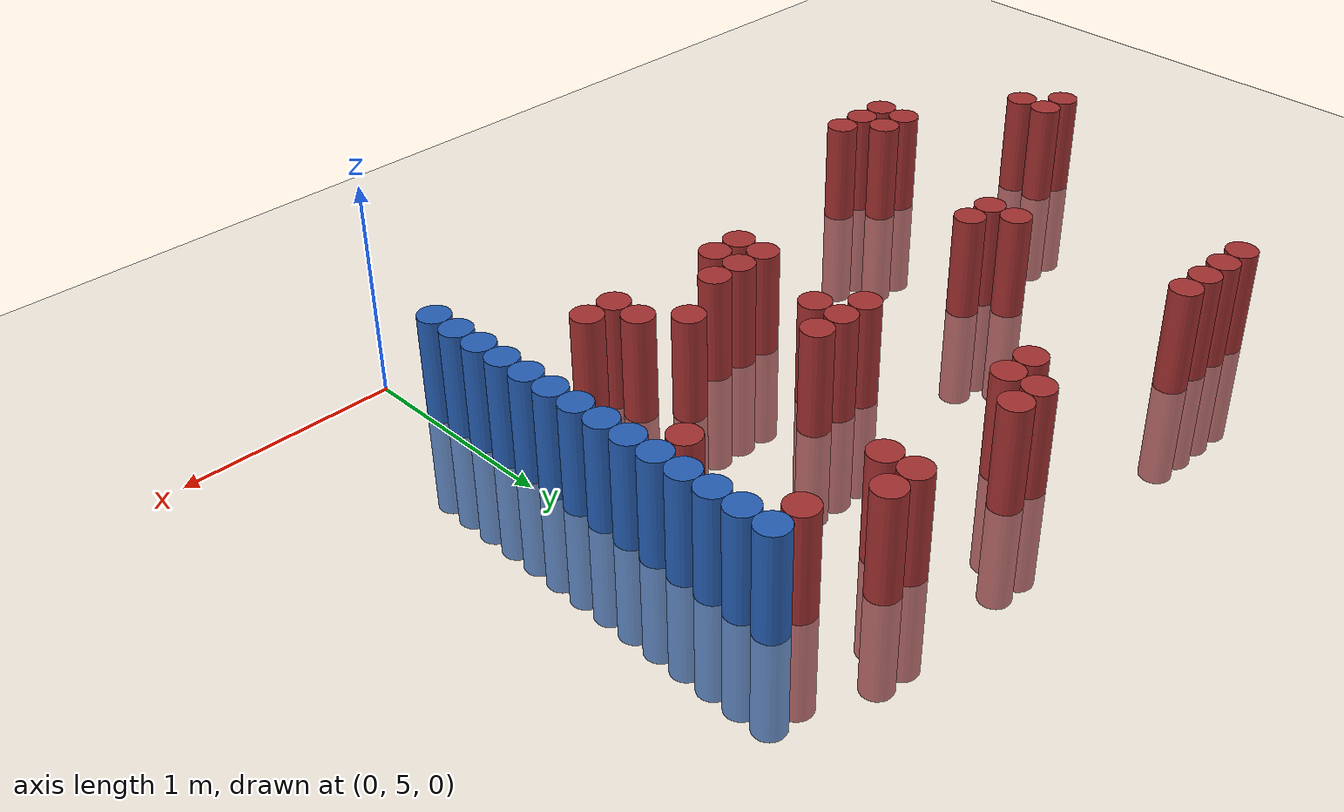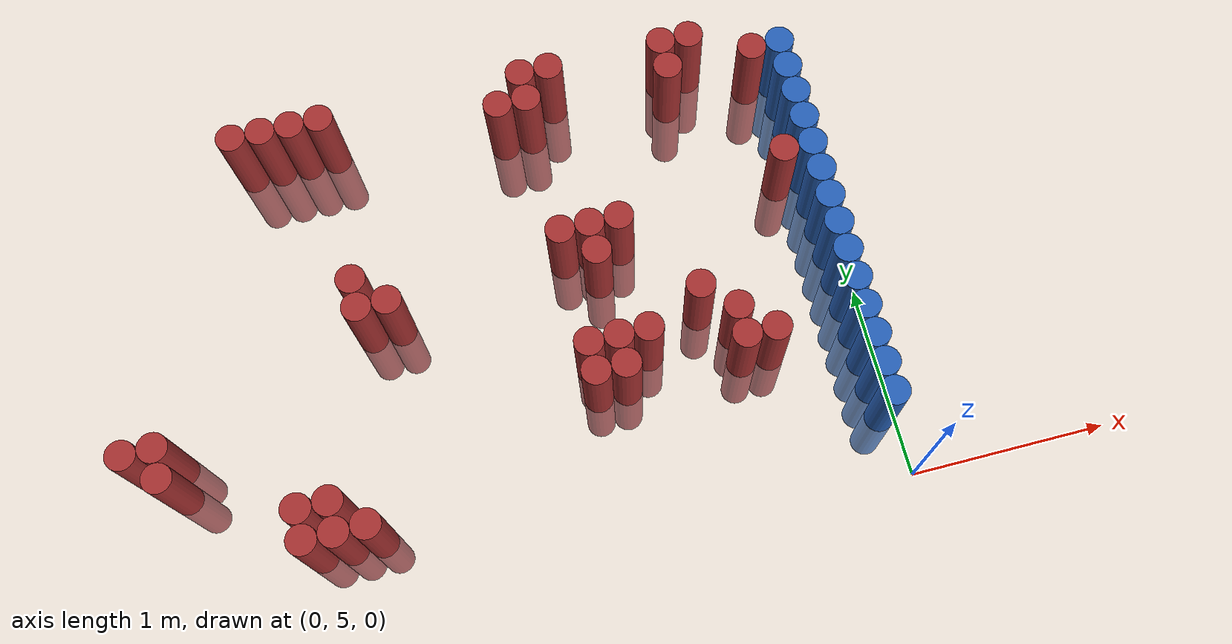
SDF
<sdf version="1.6">
 <world name="default">
  <model name="ground_plane">
   <static>1</static>
   <link name="link">
    <collision name="collision">
     <geometry><plane><normal>0 0 1</normal><size>100 100</size></plane></geometry>
     <surface><friction><ode><mu>100</mu><mu2>50</mu2></ode></friction></surface>
    </collision>
    <visual name="visual">
     <cast_shadows>0</cast_shadows>
     <geometry><plane><normal>0 0 1</normal><size>100 100</size></plane></geometry>
     <material>
      <script><uri>file://media/materials/scripts/gazebo.material</uri><name>Gazebo/Grey</name></script>
     </material>
    </visual>
   </link>
  </model>
  <model name="unit_cylinder_149">
   <static>1</static>
   <pose>-3.675000 5.925000 0.000000 0.000000 0.000000 0.000000</pose>
   <link name="link">
    <inertial>
     <mass>1</mass>
     <inertia><ixx>0.145833</ixx><ixy>0</ixy><ixz>0</ixz><iyy>0.145833</iyy><iyz>0</iyz><izz>0.125</izz></inertia>
    </inertial>
    <collision name="collision">
     <geometry><cylinder><radius>0.075000</radius><length>1</length></cylinder></geometry>
    </collision>
    <visual name="visual">
     <geometry><cylinder><radius>0.075000</radius><length>1</length></cylinder></geometry>
     <material>
      <ambient>0.648000 0.192000 0.192000 1</ambient>
      <diffuse>0.648000 0.192000 0.192000 1</diffuse>
     </material>
     <material>
      <script><name>Gazebo/Grey</name><uri>file://media/materials/scripts/gazebo.material</uri></script>
     </material>
    </visual>
   </link>
  </model>
  <model name="unit_cylinder_150">
   <static>1</static>
   <pose>-3.525000 5.775000 0.000000 0.000000 0.000000 0.000000</pose>
   <link name="link">
    <inertial>
     <mass>1</mass>
     <inertia><ixx>0.145833</ixx><ixy>0</ixy><ixz>0</ixz><iyy>0.145833</iyy><iyz>0</iyz><izz>0.125</izz></inertia>
    </inertial>
    <collision name="collision">
     <geometry><cylinder><radius>0.075000</radius><length>1</length></cylinder></geometry>
    </collision>
    <visual name="visual">
     <geometry><cylinder><radius>0.075000</radius><length>1</length></cylinder></geometry>
     <material>
      <ambient>0.648000 0.192000 0.192000 1</ambient>
      <diffuse>0.648000 0.192000 0.192000 1</diffuse>
     </material>
     <material>
      <script><name>Gazebo/Grey</name><uri>file://media/materials/scripts/gazebo.material</uri></script>
     </material>
    </visual>
   </link>
  </model>
  <model name="unit_cylinder_151">
   <static>1</static>
   <pose>-3.525000 5.925000 0.000000 0.000000 0.000000 0.000000</pose>
   <link name="link">
    <inertial>
     <mass>1</mass>
     <inertia><ixx>0.145833</ixx><ixy>0</ixy><ixz>0</ixz><iyy>0.145833</iyy><iyz>0</iyz><izz>0.125</izz></inertia>
    </inertial>
    <collision name="collision">
     <geometry><cylinder><radius>0.075000</radius><length>1</length></cylinder></geometry>
    </collision>
    <visual name="visual">
     <geometry><cylinder><radius>0.075000</radius><length>1</length></cylinder></geometry>
     <material>
      <ambient>0.648000 0.192000 0.192000 1</ambient>
      <diffuse>0.648000 0.192000 0.192000 1</diffuse>
     </material>
     <material>
      <script><name>Gazebo/Grey</name><uri>file://media/materials/scripts/gazebo.material</uri></script>
     </material>
    </visual>
   </link>
  </model>
  <model name="unit_cylinder_156">
   <static>1</static>
   <pose>-2.925000 5.325000 0.000000 0.000000 0.000000 0.000000</pose>
   <link name="link">
    <inertial>
     <mass>1</mass>
     <inertia><ixx>0.145833</ixx><ixy>0</ixy><ixz>0</ixz><iyy>0.145833</iyy><iyz>0</iyz><izz>0.125</izz></inertia>
    </inertial>
    <collision name="collision">
     <geometry><cylinder><radius>0.075000</radius><length>1</length></cylinder></geometry>
    </collision>
    <visual name="visual">
     <geometry><cylinder><radius>0.075000</radius><length>1</length></cylinder></geometry>
     <material>
      <ambient>0.648000 0.192000 0.192000 1</ambient>
      <diffuse>0.648000 0.192000 0.192000 1</diffuse>
     </material>
     <material>
      <script><name>Gazebo/Grey</name><uri>file://media/materials/scripts/gazebo.material</uri></script>
     </material>
    </visual>
   </link>
  </model>
  <model name="unit_cylinder_157">
   <static>1</static>
   <pose>-2.925000 5.475000 0.000000 0.000000 0.000000 0.000000</pose>
   <link name="link">
    <inertial>
     <mass>1</mass>
     <inertia><ixx>0.145833</ixx><ixy>0</ixy><ixz>0</ixz><iyy>0.145833</iyy><iyz>0</iyz><izz>0.125</izz></inertia>
    </inertial>
    <collision name="collision">
     <geometry><cylinder><radius>0.075000</radius><length>1</length></cylinder></geometry>
    </collision>
    <visual name="visual">
     <geometry><cylinder><radius>0.075000</radius><length>1</length></cylinder></geometry>
     <material>
      <ambient>0.648000 0.192000 0.192000 1</ambient>
      <diffuse>0.648000 0.192000 0.192000 1</diffuse>
     </material>
     <material>
      <script><name>Gazebo/Grey</name><uri>file://media/materials/scripts/gazebo.material</uri></script>
     </material>
    </visual>
   </link>
  </model>
  <model name="unit_cylinder_158">
   <static>1</static>
   <pose>-2.925000 7.425000 0.000000 0.000000 0.000000 0.000000</pose>
   <link name="link">
    <inertial>
     <mass>1</mass>
     <inertia><ixx>0.145833</ixx><ixy>0</ixy><ixz>0</ixz><iyy>0.145833</iyy><iyz>0</iyz><izz>0.125</izz></inertia>
    </inertial>
    <collision name="collision">
     <geometry><cylinder><radius>0.075000</radius><length>1</length></cylinder></geometry>
    </collision>
    <visual name="visual">
     <geometry><cylinder><radius>0.075000</radius><length>1</length></cylinder></geometry>
     <material>
      <ambient>0.648000 0.192000 0.192000 1</ambient>
      <diffuse>0.648000 0.192000 0.192000 1</diffuse>
     </material>
     <material>
      <script><name>Gazebo/Grey</name><uri>file://media/materials/scripts/gazebo.material</uri></script>
     </material>
    </visual>
   </link>
  </model>
  <model name="unit_cylinder_163">
   <static>1</static>
   <pose>-2.775000 5.325000 0.000000 0.000000 0.000000 0.000000</pose>
   <link name="link">
    <inertial>
     <mass>1</mass>
     <inertia><ixx>0.145833</ixx><ixy>0</ixy><ixz>0</ixz><iyy>0.145833</iyy><iyz>0</iyz><izz>0.125</izz></inertia>
    </inertial>
    <collision name="collision">
     <geometry><cylinder><radius>0.075000</radius><length>1</length></cylinder></geometry>
    </collision>
    <visual name="visual">
     <geometry><cylinder><radius>0.075000</radius><length>1</length></cylinder></geometry>
     <material>
      <ambient>0.648000 0.192000 0.192000 1</ambient>
      <diffuse>0.648000 0.192000 0.192000 1</diffuse>
     </material>
     <material>
      <script><name>Gazebo/Grey</name><uri>file://media/materials/scripts/gazebo.material</uri></script>
     </material>
    </visual>
   </link>
  </model>
  <model name="unit_cylinder_164">
   <static>1</static>
   <pose>-2.775000 5.475000 0.000000 0.000000 0.000000 0.000000</pose>
   <link name="link">
    <inertial>
     <mass>1</mass>
     <inertia><ixx>0.145833</ixx><ixy>0</ixy><ixz>0</ixz><iyy>0.145833</iyy><iyz>0</iyz><izz>0.125</izz></inertia>
    </inertial>
    <collision name="collision">
     <geometry><cylinder><radius>0.075000</radius><length>1</length></cylinder></geometry>
    </collision>
    <visual name="visual">
     <geometry><cylinder><radius>0.075000</radius><length>1</length></cylinder></geometry>
     <material>
      <ambient>0.648000 0.192000 0.192000 1</ambient>
      <diffuse>0.648000 0.192000 0.192000 1</diffuse>
     </material>
     <material>
      <script><name>Gazebo/Grey</name><uri>file://media/materials/scripts/gazebo.material</uri></script>
     </material>
    </visual>
   </link>
  </model>
  <model name="unit_cylinder_165">
   <static>1</static>
   <pose>-2.775000 7.425000 0.000000 0.000000 0.000000 0.000000</pose>
   <link name="link">
    <inertial>
     <mass>1</mass>
     <inertia><ixx>0.145833</ixx><ixy>0</ixy><ixz>0</ixz><iyy>0.145833</iyy><iyz>0</iyz><izz>0.125</izz></inertia>
    </inertial>
    <collision name="collision">
     <geometry><cylinder><radius>0.075000</radius><length>1</length></cylinder></geometry>
    </collision>
    <visual name="visual">
     <geometry><cylinder><radius>0.075000</radius><length>1</length></cylinder></geometry>
     <material>
      <ambient>0.648000 0.192000 0.192000 1</ambient>
      <diffuse>0.648000 0.192000 0.192000 1</diffuse>
     </material>
     <material>
      <script><name>Gazebo/Grey</name><uri>file://media/materials/scripts/gazebo.material</uri></script>
     </material>
    </visual>
   </link>
  </model>
  <model name="unit_cylinder_167">
   <static>1</static>
   <pose>-2.625000 5.325000 0.000000 0.000000 0.000000 0.000000</pose>
   <link name="link">
    <inertial>
     <mass>1</mass>
     <inertia><ixx>0.145833</ixx><ixy>0</ixy><ixz>0</ixz><iyy>0.145833</iyy><iyz>0</iyz><izz>0.125</izz></inertia>
    </inertial>
    <collision name="collision">
     <geometry><cylinder><radius>0.075000</radius><length>1</length></cylinder></geometry>
    </collision>
    <visual name="visual">
     <geometry><cylinder><radius>0.075000</radius><length>1</length></cylinder></geometry>
     <material>
      <ambient>0.648000 0.192000 0.192000 1</ambient>
      <diffuse>0.648000 0.192000 0.192000 1</diffuse>
     </material>
     <material>
      <script><name>Gazebo/Grey</name><uri>file://media/materials/scripts/gazebo.material</uri></script>
     </material>
    </visual>
   </link>
  </model>
  <model name="unit_cylinder_168">
   <static>1</static>
   <pose>-2.625000 7.425000 0.000000 0.000000 0.000000 0.000000</pose>
   <link name="link">
    <inertial>
     <mass>1</mass>
     <inertia><ixx>0.145833</ixx><ixy>0</ixy><ixz>0</ixz><iyy>0.145833</iyy><iyz>0</iyz><izz>0.125</izz></inertia>
    </inertial>
    <collision name="collision">
     <geometry><cylinder><radius>0.075000</radius><length>1</length></cylinder></geometry>
    </collision>
    <visual name="visual">
     <geometry><cylinder><radius>0.075000</radius><length>1</length></cylinder></geometry>
     <material>
      <ambient>0.648000 0.192000 0.192000 1</ambient>
      <diffuse>0.648000 0.192000 0.192000 1</diffuse>
     </material>
     <material>
      <script><name>Gazebo/Grey</name><uri>file://media/materials/scripts/gazebo.material</uri></script>
     </material>
    </visual>
   </link>
  </model>
  <model name="unit_cylinder_170">
   <static>1</static>
   <pose>-2.475000 6.375000 0.000000 0.000000 0.000000 0.000000</pose>
   <link name="link">
    <inertial>
     <mass>1</mass>
     <inertia><ixx>0.145833</ixx><ixy>0</ixy><ixz>0</ixz><iyy>0.145833</iyy><iyz>0</iyz><izz>0.125</izz></inertia>
    </inertial>
    <collision name="collision">
     <geometry><cylinder><radius>0.075000</radius><length>1</length></cylinder></geometry>
    </collision>
    <visual name="visual">
     <geometry><cylinder><radius>0.075000</radius><length>1</length></cylinder></geometry>
     <material>
      <ambient>0.648000 0.192000 0.192000 1</ambient>
      <diffuse>0.648000 0.192000 0.192000 1</diffuse>
     </material>
     <material>
      <script><name>Gazebo/Grey</name><uri>file://media/materials/scripts/gazebo.material</uri></script>
     </material>
    </visual>
   </link>
  </model>
  <model name="unit_cylinder_171">
   <static>1</static>
   <pose>-2.475000 6.525000 0.000000 0.000000 0.000000 0.000000</pose>
   <link name="link">
    <inertial>
     <mass>1</mass>
     <inertia><ixx>0.145833</ixx><ixy>0</ixy><ixz>0</ixz><iyy>0.145833</iyy><iyz>0</iyz><izz>0.125</izz></inertia>
    </inertial>
    <collision name="collision">
     <geometry><cylinder><radius>0.075000</radius><length>1</length></cylinder></geometry>
    </collision>
    <visual name="visual">
     <geometry><cylinder><radius>0.075000</radius><length>1</length></cylinder></geometry>
     <material>
      <ambient>0.648000 0.192000 0.192000 1</ambient>
      <diffuse>0.648000 0.192000 0.192000 1</diffuse>
     </material>
     <material>
      <script><name>Gazebo/Grey</name><uri>file://media/materials/scripts/gazebo.material</uri></script>
     </material>
    </visual>
   </link>
  </model>
  <model name="unit_cylinder_172">
   <static>1</static>
   <pose>-2.475000 7.425000 0.000000 0.000000 0.000000 0.000000</pose>
   <link name="link">
    <inertial>
     <mass>1</mass>
     <inertia><ixx>0.145833</ixx><ixy>0</ixy><ixz>0</ixz><iyy>0.145833</iyy><iyz>0</iyz><izz>0.125</izz></inertia>
    </inertial>
    <collision name="collision">
     <geometry><cylinder><radius>0.075000</radius><length>1</length></cylinder></geometry>
    </collision>
    <visual name="visual">
     <geometry><cylinder><radius>0.075000</radius><length>1</length></cylinder></geometry>
     <material>
      <ambient>0.648000 0.192000 0.192000 1</ambient>
      <diffuse>0.648000 0.192000 0.192000 1</diffuse>
     </material>
     <material>
      <script><name>Gazebo/Grey</name><uri>file://media/materials/scripts/gazebo.material</uri></script>
     </material>
    </visual>
   </link>
  </model>
  <model name="unit_cylinder_175">
   <static>1</static>
   <pose>-2.325000 6.375000 0.000000 0.000000 0.000000 0.000000</pose>
   <link name="link">
    <inertial>
     <mass>1</mass>
     <inertia><ixx>0.145833</ixx><ixy>0</ixy><ixz>0</ixz><iyy>0.145833</iyy><iyz>0</iyz><izz>0.125</izz></inertia>
    </inertial>
    <collision name="collision">
     <geometry><cylinder><radius>0.075000</radius><length>1</length></cylinder></geometry>
    </collision>
    <visual name="visual">
     <geometry><cylinder><radius>0.075000</radius><length>1</length></cylinder></geometry>
     <material>
      <ambient>0.648000 0.192000 0.192000 1</ambient>
      <diffuse>0.648000 0.192000 0.192000 1</diffuse>
     </material>
     <material>
      <script><name>Gazebo/Grey</name><uri>file://media/materials/scripts/gazebo.material</uri></script>
     </material>
    </visual>
   </link>
  </model>
  <model name="unit_cylinder_179">
   <static>1</static>
   <pose>-1.575000 7.275000 0.000000 0.000000 0.000000 0.000000</pose>
   <link name="link">
    <inertial>
     <mass>1</mass>
     <inertia><ixx>0.145833</ixx><ixy>0</ixy><ixz>0</ixz><iyy>0.145833</iyy><iyz>0</iyz><izz>0.125</izz></inertia>
    </inertial>
    <collision name="collision">
     <geometry><cylinder><radius>0.075000</radius><length>1</length></cylinder></geometry>
    </collision>
    <visual name="visual">
     <geometry><cylinder><radius>0.075000</radius><length>1</length></cylinder></geometry>
     <material>
      <ambient>0.648000 0.192000 0.192000 1</ambient>
      <diffuse>0.648000 0.192000 0.192000 1</diffuse>
     </material>
     <material>
      <script><name>Gazebo/Grey</name><uri>file://media/materials/scripts/gazebo.material</uri></script>
     </material>
    </visual>
   </link>
  </model>
  <model name="unit_cylinder_187">
   <static>1</static>
   <pose>-1.425000 5.775000 0.000000 0.000000 0.000000 0.000000</pose>
   <link name="link">
    <inertial>
     <mass>1</mass>
     <inertia><ixx>0.145833</ixx><ixy>0</ixy><ixz>0</ixz><iyy>0.145833</iyy><iyz>0</iyz><izz>0.125</izz></inertia>
    </inertial>
    <collision name="collision">
     <geometry><cylinder><radius>0.075000</radius><length>1</length></cylinder></geometry>
    </collision>
    <visual name="visual">
     <geometry><cylinder><radius>0.075000</radius><length>1</length></cylinder></geometry>
     <material>
      <ambient>0.648000 0.192000 0.192000 1</ambient>
      <diffuse>0.648000 0.192000 0.192000 1</diffuse>
     </material>
     <material>
      <script><name>Gazebo/Grey</name><uri>file://media/materials/scripts/gazebo.material</uri></script>
     </material>
    </visual>
   </link>
  </model>
  <model name="unit_cylinder_188">
   <static>1</static>
   <pose>-1.425000 5.925000 0.000000 0.000000 0.000000 0.000000</pose>
   <link name="link">
    <inertial>
     <mass>1</mass>
     <inertia><ixx>0.145833</ixx><ixy>0</ixy><ixz>0</ixz><iyy>0.145833</iyy><iyz>0</iyz><izz>0.125</izz></inertia>
    </inertial>
    <collision name="collision">
     <geometry><cylinder><radius>0.075000</radius><length>1</length></cylinder></geometry>
    </collision>
    <visual name="visual">
     <geometry><cylinder><radius>0.075000</radius><length>1</length></cylinder></geometry>
     <material>
      <ambient>0.648000 0.192000 0.192000 1</ambient>
      <diffuse>0.648000 0.192000 0.192000 1</diffuse>
     </material>
     <material>
      <script><name>Gazebo/Grey</name><uri>file://media/materials/scripts/gazebo.material</uri></script>
     </material>
    </visual>
   </link>
  </model>
  <model name="unit_cylinder_189">
   <static>1</static>
   <pose>-1.425000 6.525000 0.000000 0.000000 0.000000 0.000000</pose>
   <link name="link">
    <inertial>
     <mass>1</mass>
     <inertia><ixx>0.145833</ixx><ixy>0</ixy><ixz>0</ixz><iyy>0.145833</iyy><iyz>0</iyz><izz>0.125</izz></inertia>
    </inertial>
    <collision name="collision">
     <geometry><cylinder><radius>0.075000</radius><length>1</length></cylinder></geometry>
    </collision>
    <visual name="visual">
     <geometry><cylinder><radius>0.075000</radius><length>1</length></cylinder></geometry>
     <material>
      <ambient>0.648000 0.192000 0.192000 1</ambient>
      <diffuse>0.648000 0.192000 0.192000 1</diffuse>
     </material>
     <material>
      <script><name>Gazebo/Grey</name><uri>file://media/materials/scripts/gazebo.material</uri></script>
     </material>
    </visual>
   </link>
  </model>
  <model name="unit_cylinder_190">
   <static>1</static>
   <pose>-1.425000 7.275000 0.000000 0.000000 0.000000 0.000000</pose>
   <link name="link">
    <inertial>
     <mass>1</mass>
     <inertia><ixx>0.145833</ixx><ixy>0</ixy><ixz>0</ixz><iyy>0.145833</iyy><iyz>0</iyz><izz>0.125</izz></inertia>
    </inertial>
    <collision name="collision">
     <geometry><cylinder><radius>0.075000</radius><length>1</length></cylinder></geometry>
    </collision>
    <visual name="visual">
     <geometry><cylinder><radius>0.075000</radius><length>1</length></cylinder></geometry>
     <material>
      <ambient>0.648000 0.192000 0.192000 1</ambient>
      <diffuse>0.648000 0.192000 0.192000 1</diffuse>
     </material>
     <material>
      <script><name>Gazebo/Grey</name><uri>file://media/materials/scripts/gazebo.material</uri></script>
     </material>
    </visual>
   </link>
  </model>
  <model name="unit_cylinder_191">
   <static>1</static>
   <pose>-1.425000 7.425000 0.000000 0.000000 0.000000 0.000000</pose>
   <link name="link">
    <inertial>
     <mass>1</mass>
     <inertia><ixx>0.145833</ixx><ixy>0</ixy><ixz>0</ixz><iyy>0.145833</iyy><iyz>0</iyz><izz>0.125</izz></inertia>
    </inertial>
    <collision name="collision">
     <geometry><cylinder><radius>0.075000</radius><length>1</length></cylinder></geometry>
    </collision>
    <visual name="visual">
     <geometry><cylinder><radius>0.075000</radius><length>1</length></cylinder></geometry>
     <material>
      <ambient>0.648000 0.192000 0.192000 1</ambient>
      <diffuse>0.648000 0.192000 0.192000 1</diffuse>
     </material>
     <material>
      <script><name>Gazebo/Grey</name><uri>file://media/materials/scripts/gazebo.material</uri></script>
     </material>
    </visual>
   </link>
  </model>
  <model name="unit_cylinder_197">
   <static>1</static>
   <pose>-1.275000 5.775000 0.000000 0.000000 0.000000 0.000000</pose>
   <link name="link">
    <inertial>
     <mass>1</mass>
     <inertia><ixx>0.145833</ixx><ixy>0</ixy><ixz>0</ixz><iyy>0.145833</iyy><iyz>0</iyz><izz>0.125</izz></inertia>
    </inertial>
    <collision name="collision">
     <geometry><cylinder><radius>0.075000</radius><length>1</length></cylinder></geometry>
    </collision>
    <visual name="visual">
     <geometry><cylinder><radius>0.075000</radius><length>1</length></cylinder></geometry>
     <material>
      <ambient>0.648000 0.192000 0.192000 1</ambient>
      <diffuse>0.648000 0.192000 0.192000 1</diffuse>
     </material>
     <material>
      <script><name>Gazebo/Grey</name><uri>file://media/materials/scripts/gazebo.material</uri></script>
     </material>
    </visual>
   </link>
  </model>
  <model name="unit_cylinder_198">
   <static>1</static>
   <pose>-1.275000 5.925000 0.000000 0.000000 0.000000 0.000000</pose>
   <link name="link">
    <inertial>
     <mass>1</mass>
     <inertia><ixx>0.145833</ixx><ixy>0</ixy><ixz>0</ixz><iyy>0.145833</iyy><iyz>0</iyz><izz>0.125</izz></inertia>
    </inertial>
    <collision name="collision">
     <geometry><cylinder><radius>0.075000</radius><length>1</length></cylinder></geometry>
    </collision>
    <visual name="visual">
     <geometry><cylinder><radius>0.075000</radius><length>1</length></cylinder></geometry>
     <material>
      <ambient>0.648000 0.192000 0.192000 1</ambient>
      <diffuse>0.648000 0.192000 0.192000 1</diffuse>
     </material>
     <material>
      <script><name>Gazebo/Grey</name><uri>file://media/materials/scripts/gazebo.material</uri></script>
     </material>
    </visual>
   </link>
  </model>
  <model name="unit_cylinder_199">
   <static>1</static>
   <pose>-1.275000 6.375000 0.000000 0.000000 0.000000 0.000000</pose>
   <link name="link">
    <inertial>
     <mass>1</mass>
     <inertia><ixx>0.145833</ixx><ixy>0</ixy><ixz>0</ixz><iyy>0.145833</iyy><iyz>0</iyz><izz>0.125</izz></inertia>
    </inertial>
    <collision name="collision">
     <geometry><cylinder><radius>0.075000</radius><length>1</length></cylinder></geometry>
    </collision>
    <visual name="visual">
     <geometry><cylinder><radius>0.075000</radius><length>1</length></cylinder></geometry>
     <material>
      <ambient>0.648000 0.192000 0.192000 1</ambient>
      <diffuse>0.648000 0.192000 0.192000 1</diffuse>
     </material>
     <material>
      <script><name>Gazebo/Grey</name><uri>file://media/materials/scripts/gazebo.material</uri></script>
     </material>
    </visual>
   </link>
  </model>
  <model name="unit_cylinder_200">
   <static>1</static>
   <pose>-1.275000 6.525000 0.000000 0.000000 0.000000 0.000000</pose>
   <link name="link">
    <inertial>
     <mass>1</mass>
     <inertia><ixx>0.145833</ixx><ixy>0</ixy><ixz>0</ixz><iyy>0.145833</iyy><iyz>0</iyz><izz>0.125</izz></inertia>
    </inertial>
    <collision name="collision">
     <geometry><cylinder><radius>0.075000</radius><length>1</length></cylinder></geometry>
    </collision>
    <visual name="visual">
     <geometry><cylinder><radius>0.075000</radius><length>1</length></cylinder></geometry>
     <material>
      <ambient>0.648000 0.192000 0.192000 1</ambient>
      <diffuse>0.648000 0.192000 0.192000 1</diffuse>
     </material>
     <material>
      <script><name>Gazebo/Grey</name><uri>file://media/materials/scripts/gazebo.material</uri></script>
     </material>
    </visual>
   </link>
  </model>
  <model name="unit_cylinder_201">
   <static>1</static>
   <pose>-1.275000 7.425000 0.000000 0.000000 0.000000 0.000000</pose>
   <link name="link">
    <inertial>
     <mass>1</mass>
     <inertia><ixx>0.145833</ixx><ixy>0</ixy><ixz>0</ixz><iyy>0.145833</iyy><iyz>0</iyz><izz>0.125</izz></inertia>
    </inertial>
    <collision name="collision">
     <geometry><cylinder><radius>0.075000</radius><length>1</length></cylinder></geometry>
    </collision>
    <visual name="visual">
     <geometry><cylinder><radius>0.075000</radius><length>1</length></cylinder></geometry>
     <material>
      <ambient>0.648000 0.192000 0.192000 1</ambient>
      <diffuse>0.648000 0.192000 0.192000 1</diffuse>
     </material>
     <material>
      <script><name>Gazebo/Grey</name><uri>file://media/materials/scripts/gazebo.material</uri></script>
     </material>
    </visual>
   </link>
  </model>
  <model name="unit_cylinder_203">
   <static>1</static>
   <pose>-1.125000 5.925000 0.000000 0.000000 0.000000 0.000000</pose>
   <link name="link">
    <inertial>
     <mass>1</mass>
     <inertia><ixx>0.145833</ixx><ixy>0</ixy><ixz>0</ixz><iyy>0.145833</iyy><iyz>0</iyz><izz>0.125</izz></inertia>
    </inertial>
    <collision name="collision">
     <geometry><cylinder><radius>0.075000</radius><length>1</length></cylinder></geometry>
    </collision>
    <visual name="visual">
     <geometry><cylinder><radius>0.075000</radius><length>1</length></cylinder></geometry>
     <material>
      <ambient>0.648000 0.192000 0.192000 1</ambient>
      <diffuse>0.648000 0.192000 0.192000 1</diffuse>
     </material>
     <material>
      <script><name>Gazebo/Grey</name><uri>file://media/materials/scripts/gazebo.material</uri></script>
     </material>
    </visual>
   </link>
  </model>
  <model name="unit_cylinder_204">
   <static>1</static>
   <pose>-1.125000 6.525000 0.000000 0.000000 0.000000 0.000000</pose>
   <link name="link">
    <inertial>
     <mass>1</mass>
     <inertia><ixx>0.145833</ixx><ixy>0</ixy><ixz>0</ixz><iyy>0.145833</iyy><iyz>0</iyz><izz>0.125</izz></inertia>
    </inertial>
    <collision name="collision">
     <geometry><cylinder><radius>0.075000</radius><length>1</length></cylinder></geometry>
    </collision>
    <visual name="visual">
     <geometry><cylinder><radius>0.075000</radius><length>1</length></cylinder></geometry>
     <material>
      <ambient>0.648000 0.192000 0.192000 1</ambient>
      <diffuse>0.648000 0.192000 0.192000 1</diffuse>
     </material>
     <material>
      <script><name>Gazebo/Grey</name><uri>file://media/materials/scripts/gazebo.material</uri></script>
     </material>
    </visual>
   </link>
  </model>
  <model name="unit_cylinder_205">
   <static>1</static>
   <pose>-0.825000 6.075000 0.000000 0.000000 0.000000 0.000000</pose>
   <link name="link">
    <inertial>
     <mass>1</mass>
     <inertia><ixx>0.145833</ixx><ixy>0</ixy><ixz>0</ixz><iyy>0.145833</iyy><iyz>0</iyz><izz>0.125</izz></inertia>
    </inertial>
    <collision name="collision">
     <geometry><cylinder><radius>0.075000</radius><length>1</length></cylinder></geometry>
    </collision>
    <visual name="visual">
     <geometry><cylinder><radius>0.075000</radius><length>1</length></cylinder></geometry>
     <material>
      <ambient>0.648000 0.192000 0.192000 1</ambient>
      <diffuse>0.648000 0.192000 0.192000 1</diffuse>
     </material>
     <material>
      <script><name>Gazebo/Grey</name><uri>file://media/materials/scripts/gazebo.material</uri></script>
     </material>
    </visual>
   </link>
  </model>
  <model name="unit_cylinder_206">
   <static>1</static>
   <pose>-0.675000 5.775000 0.000000 0.000000 0.000000 0.000000</pose>
   <link name="link">
    <inertial>
     <mass>1</mass>
     <inertia><ixx>0.145833</ixx><ixy>0</ixy><ixz>0</ixz><iyy>0.145833</iyy><iyz>0</iyz><izz>0.125</izz></inertia>
    </inertial>
    <collision name="collision">
     <geometry><cylinder><radius>0.075000</radius><length>1</length></cylinder></geometry>
    </collision>
    <visual name="visual">
     <geometry><cylinder><radius>0.075000</radius><length>1</length></cylinder></geometry>
     <material>
      <ambient>0.648000 0.192000 0.192000 1</ambient>
      <diffuse>0.648000 0.192000 0.192000 1</diffuse>
     </material>
     <material>
      <script><name>Gazebo/Grey</name><uri>file://media/materials/scripts/gazebo.material</uri></script>
     </material>
    </visual>
   </link>
  </model>
  <model name="unit_cylinder_207">
   <static>1</static>
   <pose>-0.675000 5.925000 0.000000 0.000000 0.000000 0.000000</pose>
   <link name="link">
    <inertial>
     <mass>1</mass>
     <inertia><ixx>0.145833</ixx><ixy>0</ixy><ixz>0</ixz><iyy>0.145833</iyy><iyz>0</iyz><izz>0.125</izz></inertia>
    </inertial>
    <collision name="collision">
     <geometry><cylinder><radius>0.075000</radius><length>1</length></cylinder></geometry>
    </collision>
    <visual name="visual">
     <geometry><cylinder><radius>0.075000</radius><length>1</length></cylinder></geometry>
     <material>
      <ambient>0.648000 0.192000 0.192000 1</ambient>
      <diffuse>0.648000 0.192000 0.192000 1</diffuse>
     </material>
     <material>
      <script><name>Gazebo/Grey</name><uri>file://media/materials/scripts/gazebo.material</uri></script>
     </material>
    </visual>
   </link>
  </model>
  <model name="unit_cylinder_208">
   <static>1</static>
   <pose>-0.675000 7.275000 0.000000 0.000000 0.000000 0.000000</pose>
   <link name="link">
    <inertial>
     <mass>1</mass>
     <inertia><ixx>0.145833</ixx><ixy>0</ixy><ixz>0</ixz><iyy>0.145833</iyy><iyz>0</iyz><izz>0.125</izz></inertia>
    </inertial>
    <collision name="collision">
     <geometry><cylinder><radius>0.075000</radius><length>1</length></cylinder></geometry>
    </collision>
    <visual name="visual">
     <geometry><cylinder><radius>0.075000</radius><length>1</length></cylinder></geometry>
     <material>
      <ambient>0.648000 0.192000 0.192000 1</ambient>
      <diffuse>0.648000 0.192000 0.192000 1</diffuse>
     </material>
     <material>
      <script><name>Gazebo/Grey</name><uri>file://media/materials/scripts/gazebo.material</uri></script>
     </material>
    </visual>
   </link>
  </model>
  <model name="unit_cylinder_209">
   <static>1</static>
   <pose>-0.675000 7.425000 0.000000 0.000000 0.000000 0.000000</pose>
   <link name="link">
    <inertial>
     <mass>1</mass>
     <inertia><ixx>0.145833</ixx><ixy>0</ixy><ixz>0</ixz><iyy>0.145833</iyy><iyz>0</iyz><izz>0.125</izz></inertia>
    </inertial>
    <collision name="collision">
     <geometry><cylinder><radius>0.075000</radius><length>1</length></cylinder></geometry>
    </collision>
    <visual name="visual">
     <geometry><cylinder><radius>0.075000</radius><length>1</length></cylinder></geometry>
     <material>
      <ambient>0.648000 0.192000 0.192000 1</ambient>
      <diffuse>0.648000 0.192000 0.192000 1</diffuse>
     </material>
     <material>
      <script><name>Gazebo/Grey</name><uri>file://media/materials/scripts/gazebo.material</uri></script>
     </material>
    </visual>
   </link>
  </model>
  <model name="unit_cylinder_210">
   <static>1</static>
   <pose>-0.525000 5.775000 0.000000 0.000000 0.000000 0.000000</pose>
   <link name="link">
    <inertial>
     <mass>1</mass>
     <inertia><ixx>0.145833</ixx><ixy>0</ixy><ixz>0</ixz><iyy>0.145833</iyy><iyz>0</iyz><izz>0.125</izz></inertia>
    </inertial>
    <collision name="collision">
     <geometry><cylinder><radius>0.075000</radius><length>1</length></cylinder></geometry>
    </collision>
    <visual name="visual">
     <geometry><cylinder><radius>0.075000</radius><length>1</length></cylinder></geometry>
     <material>
      <ambient>0.648000 0.192000 0.192000 1</ambient>
      <diffuse>0.648000 0.192000 0.192000 1</diffuse>
     </material>
     <material>
      <script><name>Gazebo/Grey</name><uri>file://media/materials/scripts/gazebo.material</uri></script>
     </material>
    </visual>
   </link>
  </model>
  <model name="unit_cylinder_211">
   <static>1</static>
   <pose>-0.525000 7.425000 0.000000 0.000000 0.000000 0.000000</pose>
   <link name="link">
    <inertial>
     <mass>1</mass>
     <inertia><ixx>0.145833</ixx><ixy>0</ixy><ixz>0</ixz><iyy>0.145833</iyy><iyz>0</iyz><izz>0.125</izz></inertia>
    </inertial>
    <collision name="collision">
     <geometry><cylinder><radius>0.075000</radius><length>1</length></cylinder></geometry>
    </collision>
    <visual name="visual">
     <geometry><cylinder><radius>0.075000</radius><length>1</length></cylinder></geometry>
     <material>
      <ambient>0.648000 0.192000 0.192000 1</ambient>
      <diffuse>0.648000 0.192000 0.192000 1</diffuse>
     </material>
     <material>
      <script><name>Gazebo/Grey</name><uri>file://media/materials/scripts/gazebo.material</uri></script>
     </material>
    </visual>
   </link>
  </model>
  <model name="unit_cylinder_216">
   <static>1</static>
   <pose>-0.225000 6.675000 0.000000 0.000000 0.000000 0.000000</pose>
   <link name="link">
    <inertial>
     <mass>1</mass>
     <inertia><ixx>0.145833</ixx><ixy>0</ixy><ixz>0</ixz><iyy>0.145833</iyy><iyz>0</iyz><izz>0.125</izz></inertia>
    </inertial>
    <collision name="collision">
     <geometry><cylinder><radius>0.075000</radius><length>1</length></cylinder></geometry>
    </collision>
    <visual name="visual">
     <geometry><cylinder><radius>0.075000</radius><length>1</length></cylinder></geometry>
     <material>
      <ambient>0.648000 0.192000 0.192000 1</ambient>
      <diffuse>0.648000 0.192000 0.192000 1</diffuse>
     </material>
     <material>
      <script><name>Gazebo/Grey</name><uri>file://media/materials/scripts/gazebo.material</uri></script>
     </material>
    </visual>
   </link>
  </model>
  <model name="unit_cylinder_217">
   <static>1</static>
   <pose>-0.225000 7.275000 0.000000 0.000000 0.000000 0.000000</pose>
   <link name="link">
    <inertial>
     <mass>1</mass>
     <inertia><ixx>0.145833</ixx><ixy>0</ixy><ixz>0</ixz><iyy>0.145833</iyy><iyz>0</iyz><izz>0.125</izz></inertia>
    </inertial>
    <collision name="collision">
     <geometry><cylinder><radius>0.075000</radius><length>1</length></cylinder></geometry>
    </collision>
    <visual name="visual">
     <geometry><cylinder><radius>0.075000</radius><length>1</length></cylinder></geometry>
     <material>
      <ambient>0.648000 0.192000 0.192000 1</ambient>
      <diffuse>0.648000 0.192000 0.192000 1</diffuse>
     </material>
     <material>
      <script><name>Gazebo/Grey</name><uri>file://media/materials/scripts/gazebo.material</uri></script>
     </material>
    </visual>
   </link>
  </model>
  <model name="unit_cylinder_225">
   <static>1</static>
   <pose>-0.075000 5.325000 0.000000 0.000000 0.000000 0.000000</pose>
   <link name="link">
    <inertial>
     <mass>1</mass>
     <inertia><ixx>0.145833</ixx><ixy>0</ixy><ixz>0</ixz><iyy>0.145833</iyy><iyz>0</iyz><izz>0.125</izz></inertia>
    </inertial>
    <collision name="collision">
     <geometry><cylinder><radius>0.075000</radius><length>1</length></cylinder></geometry>
    </collision>
    <visual name="visual">
     <geometry><cylinder><radius>0.075000</radius><length>1</length></cylinder></geometry>
     <material>
      <ambient>0.152000 0.379000 0.720000 1</ambient>
      <diffuse>0.152000 0.379000 0.720000 1</diffuse>
     </material>
     <material>
      <script><name>Gazebo/Grey</name><uri>file://media/materials/scripts/gazebo.material</uri></script>
     </material>
    </visual>
   </link>
  </model>
  <model name="unit_cylinder_226">
   <static>1</static>
   <pose>-0.075000 5.475000 0.000000 0.000000 0.000000 0.000000</pose>
   <link name="link">
    <inertial>
     <mass>1</mass>
     <inertia><ixx>0.145833</ixx><ixy>0</ixy><ixz>0</ixz><iyy>0.145833</iyy><iyz>0</iyz><izz>0.125</izz></inertia>
    </inertial>
    <collision name="collision">
     <geometry><cylinder><radius>0.075000</radius><length>1</length></cylinder></geometry>
    </collision>
    <visual name="visual">
     <geometry><cylinder><radius>0.075000</radius><length>1</length></cylinder></geometry>
     <material>
      <ambient>0.152000 0.379000 0.720000 1</ambient>
      <diffuse>0.152000 0.379000 0.720000 1</diffuse>
     </material>
     <material>
      <script><name>Gazebo/Grey</name><uri>file://media/materials/scripts/gazebo.material</uri></script>
     </material>
    </visual>
   </link>
  </model>
  <model name="unit_cylinder_227">
   <static>1</static>
   <pose>-0.075000 5.625000 0.000000 0.000000 0.000000 0.000000</pose>
   <link name="link">
    <inertial>
     <mass>1</mass>
     <inertia><ixx>0.145833</ixx><ixy>0</ixy><ixz>0</ixz><iyy>0.145833</iyy><iyz>0</iyz><izz>0.125</izz></inertia>
    </inertial>
    <collision name="collision">
     <geometry><cylinder><radius>0.075000</radius><length>1</length></cylinder></geometry>
    </collision>
    <visual name="visual">
     <geometry><cylinder><radius>0.075000</radius><length>1</length></cylinder></geometry>
     <material>
      <ambient>0.152000 0.379000 0.720000 1</ambient>
      <diffuse>0.152000 0.379000 0.720000 1</diffuse>
     </material>
     <material>
      <script><name>Gazebo/Grey</name><uri>file://media/materials/scripts/gazebo.material</uri></script>
     </material>
    </visual>
   </link>
  </model>
  <model name="unit_cylinder_228">
   <static>1</static>
   <pose>-0.075000 5.775000 0.000000 0.000000 0.000000 0.000000</pose>
   <link name="link">
    <inertial>
     <mass>1</mass>
     <inertia><ixx>0.145833</ixx><ixy>0</ixy><ixz>0</ixz><iyy>0.145833</iyy><iyz>0</iyz><izz>0.125</izz></inertia>
    </inertial>
    <collision name="collision">
     <geometry><cylinder><radius>0.075000</radius><length>1</length></cylinder></geometry>
    </collision>
    <visual name="visual">
     <geometry><cylinder><radius>0.075000</radius><length>1</length></cylinder></geometry>
     <material>
      <ambient>0.152000 0.379000 0.720000 1</ambient>
      <diffuse>0.152000 0.379000 0.720000 1</diffuse>
     </material>
     <material>
      <script><name>Gazebo/Grey</name><uri>file://media/materials/scripts/gazebo.material</uri></script>
     </material>
    </visual>
   </link>
  </model>
  <model name="unit_cylinder_229">
   <static>1</static>
   <pose>-0.075000 5.925000 0.000000 0.000000 0.000000 0.000000</pose>
   <link name="link">
    <inertial>
     <mass>1</mass>
     <inertia><ixx>0.145833</ixx><ixy>0</ixy><ixz>0</ixz><iyy>0.145833</iyy><iyz>0</iyz><izz>0.125</izz></inertia>
    </inertial>
    <collision name="collision">
     <geometry><cylinder><radius>0.075000</radius><length>1</length></cylinder></geometry>
    </collision>
    <visual name="visual">
     <geometry><cylinder><radius>0.075000</radius><length>1</length></cylinder></geometry>
     <material>
      <ambient>0.152000 0.379000 0.720000 1</ambient>
      <diffuse>0.152000 0.379000 0.720000 1</diffuse>
     </material>
     <material>
      <script><name>Gazebo/Grey</name><uri>file://media/materials/scripts/gazebo.material</uri></script>
     </material>
    </visual>
   </link>
  </model>
  <model name="unit_cylinder_230">
   <static>1</static>
   <pose>-0.075000 6.075000 0.000000 0.000000 0.000000 0.000000</pose>
   <link name="link">
    <inertial>
     <mass>1</mass>
     <inertia><ixx>0.145833</ixx><ixy>0</ixy><ixz>0</ixz><iyy>0.145833</iyy><iyz>0</iyz><izz>0.125</izz></inertia>
    </inertial>
    <collision name="collision">
     <geometry><cylinder><radius>0.075000</radius><length>1</length></cylinder></geometry>
    </collision>
    <visual name="visual">
     <geometry><cylinder><radius>0.075000</radius><length>1</length></cylinder></geometry>
     <material>
      <ambient>0.152000 0.379000 0.720000 1</ambient>
      <diffuse>0.152000 0.379000 0.720000 1</diffuse>
     </material>
     <material>
      <script><name>Gazebo/Grey</name><uri>file://media/materials/scripts/gazebo.material</uri></script>
     </material>
    </visual>
   </link>
  </model>
  <model name="unit_cylinder_231">
   <static>1</static>
   <pose>-0.075000 6.225000 0.000000 0.000000 0.000000 0.000000</pose>
   <link name="link">
    <inertial>
     <mass>1</mass>
     <inertia><ixx>0.145833</ixx><ixy>0</ixy><ixz>0</ixz><iyy>0.145833</iyy><iyz>0</iyz><izz>0.125</izz></inertia>
    </inertial>
    <collision name="collision">
     <geometry><cylinder><radius>0.075000</radius><length>1</length></cylinder></geometry>
    </collision>
    <visual name="visual">
     <geometry><cylinder><radius>0.075000</radius><length>1</length></cylinder></geometry>
     <material>
      <ambient>0.152000 0.379000 0.720000 1</ambient>
      <diffuse>0.152000 0.379000 0.720000 1</diffuse>
     </material>
     <material>
      <script><name>Gazebo/Grey</name><uri>file://media/materials/scripts/gazebo.material</uri></script>
     </material>
    </visual>
   </link>
  </model>
  <model name="unit_cylinder_232">
   <static>1</static>
   <pose>-0.075000 6.375000 0.000000 0.000000 0.000000 0.000000</pose>
   <link name="link">
    <inertial>
     <mass>1</mass>
     <inertia><ixx>0.145833</ixx><ixy>0</ixy><ixz>0</ixz><iyy>0.145833</iyy><iyz>0</iyz><izz>0.125</izz></inertia>
    </inertial>
    <collision name="collision">
     <geometry><cylinder><radius>0.075000</radius><length>1</length></cylinder></geometry>
    </collision>
    <visual name="visual">
     <geometry><cylinder><radius>0.075000</radius><length>1</length></cylinder></geometry>
     <material>
      <ambient>0.152000 0.379000 0.720000 1</ambient>
      <diffuse>0.152000 0.379000 0.720000 1</diffuse>
     </material>
     <material>
      <script><name>Gazebo/Grey</name><uri>file://media/materials/scripts/gazebo.material</uri></script>
     </material>
    </visual>
   </link>
  </model>
  <model name="unit_cylinder_233">
   <static>1</static>
   <pose>-0.075000 6.525000 0.000000 0.000000 0.000000 0.000000</pose>
   <link name="link">
    <inertial>
     <mass>1</mass>
     <inertia><ixx>0.145833</ixx><ixy>0</ixy><ixz>0</ixz><iyy>0.145833</iyy><iyz>0</iyz><izz>0.125</izz></inertia>
    </inertial>
    <collision name="collision">
     <geometry><cylinder><radius>0.075000</radius><length>1</length></cylinder></geometry>
    </collision>
    <visual name="visual">
     <geometry><cylinder><radius>0.075000</radius><length>1</length></cylinder></geometry>
     <material>
      <ambient>0.152000 0.379000 0.720000 1</ambient>
      <diffuse>0.152000 0.379000 0.720000 1</diffuse>
     </material>
     <material>
      <script><name>Gazebo/Grey</name><uri>file://media/materials/scripts/gazebo.material</uri></script>
     </material>
    </visual>
   </link>
  </model>
  <model name="unit_cylinder_234">
   <static>1</static>
   <pose>-0.075000 6.675000 0.000000 0.000000 0.000000 0.000000</pose>
   <link name="link">
    <inertial>
     <mass>1</mass>
     <inertia><ixx>0.145833</ixx><ixy>0</ixy><ixz>0</ixz><iyy>0.145833</iyy><iyz>0</iyz><izz>0.125</izz></inertia>
    </inertial>
    <collision name="collision">
     <geometry><cylinder><radius>0.075000</radius><length>1</length></cylinder></geometry>
    </collision>
    <visual name="visual">
     <geometry><cylinder><radius>0.075000</radius><length>1</length></cylinder></geometry>
     <material>
      <ambient>0.152000 0.379000 0.720000 1</ambient>
      <diffuse>0.152000 0.379000 0.720000 1</diffuse>
     </material>
     <material>
      <script><name>Gazebo/Grey</name><uri>file://media/materials/scripts/gazebo.material</uri></script>
     </material>
    </visual>
   </link>
  </model>
  <model name="unit_cylinder_235">
   <static>1</static>
   <pose>-0.075000 6.825000 0.000000 0.000000 0.000000 0.000000</pose>
   <link name="link">
    <inertial>
     <mass>1</mass>
     <inertia><ixx>0.145833</ixx><ixy>0</ixy><ixz>0</ixz><iyy>0.145833</iyy><iyz>0</iyz><izz>0.125</izz></inertia>
    </inertial>
    <collision name="collision">
     <geometry><cylinder><radius>0.075000</radius><length>1</length></cylinder></geometry>
    </collision>
    <visual name="visual">
     <geometry><cylinder><radius>0.075000</radius><length>1</length></cylinder></geometry>
     <material>
      <ambient>0.152000 0.379000 0.720000 1</ambient>
      <diffuse>0.152000 0.379000 0.720000 1</diffuse>
     </material>
     <material>
      <script><name>Gazebo/Grey</name><uri>file://media/materials/scripts/gazebo.material</uri></script>
     </material>
    </visual>
   </link>
  </model>
  <model name="unit_cylinder_236">
   <static>1</static>
   <pose>-0.075000 6.975000 0.000000 0.000000 0.000000 0.000000</pose>
   <link name="link">
    <inertial>
     <mass>1</mass>
     <inertia><ixx>0.145833</ixx><ixy>0</ixy><ixz>0</ixz><iyy>0.145833</iyy><iyz>0</iyz><izz>0.125</izz></inertia>
    </inertial>
    <collision name="collision">
     <geometry><cylinder><radius>0.075000</radius><length>1</length></cylinder></geometry>
    </collision>
    <visual name="visual">
     <geometry><cylinder><radius>0.075000</radius><length>1</length></cylinder></geometry>
     <material>
      <ambient>0.152000 0.379000 0.720000 1</ambient>
      <diffuse>0.152000 0.379000 0.720000 1</diffuse>
     </material>
     <material>
      <script><name>Gazebo/Grey</name><uri>file://media/materials/scripts/gazebo.material</uri></script>
     </material>
    </visual>
   </link>
  </model>
  <model name="unit_cylinder_237">
   <static>1</static>
   <pose>-0.075000 7.125000 0.000000 0.000000 0.000000 0.000000</pose>
   <link name="link">
    <inertial>
     <mass>1</mass>
     <inertia><ixx>0.145833</ixx><ixy>0</ixy><ixz>0</ixz><iyy>0.145833</iyy><iyz>0</iyz><izz>0.125</izz></inertia>
    </inertial>
    <collision name="collision">
     <geometry><cylinder><radius>0.075000</radius><length>1</length></cylinder></geometry>
    </collision>
    <visual name="visual">
     <geometry><cylinder><radius>0.075000</radius><length>1</length></cylinder></geometry>
     <material>
      <ambient>0.152000 0.379000 0.720000 1</ambient>
      <diffuse>0.152000 0.379000 0.720000 1</diffuse>
     </material>
     <material>
      <script><name>Gazebo/Grey</name><uri>file://media/materials/scripts/gazebo.material</uri></script>
     </material>
    </visual>
   </link>
  </model>
  <model name="unit_cylinder_238">
   <static>1</static>
   <pose>-0.075000 7.275000 0.000000 0.000000 0.000000 0.000000</pose>
   <link name="link">
    <inertial>
     <mass>1</mass>
     <inertia><ixx>0.145833</ixx><ixy>0</ixy><ixz>0</ixz><iyy>0.145833</iyy><iyz>0</iyz><izz>0.125</izz></inertia>
    </inertial>
    <collision name="collision">
     <geometry><cylinder><radius>0.075000</radius><length>1</length></cylinder></geometry>
    </collision>
    <visual name="visual">
     <geometry><cylinder><radius>0.075000</radius><length>1</length></cylinder></geometry>
     <material>
      <ambient>0.152000 0.379000 0.720000 1</ambient>
      <diffuse>0.152000 0.379000 0.720000 1</diffuse>
     </material>
     <material>
      <script><name>Gazebo/Grey</name><uri>file://media/materials/scripts/gazebo.material</uri></script>
     </material>
    </visual>
   </link>
  </model>
 </world>
</sdf>
